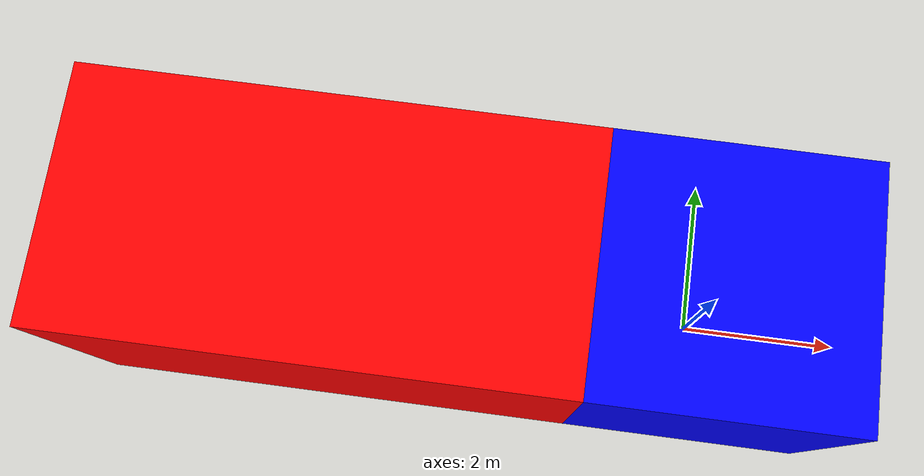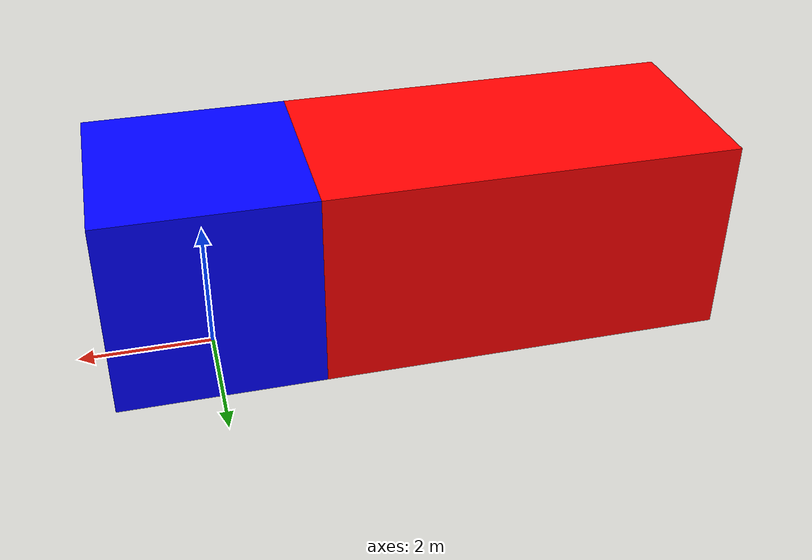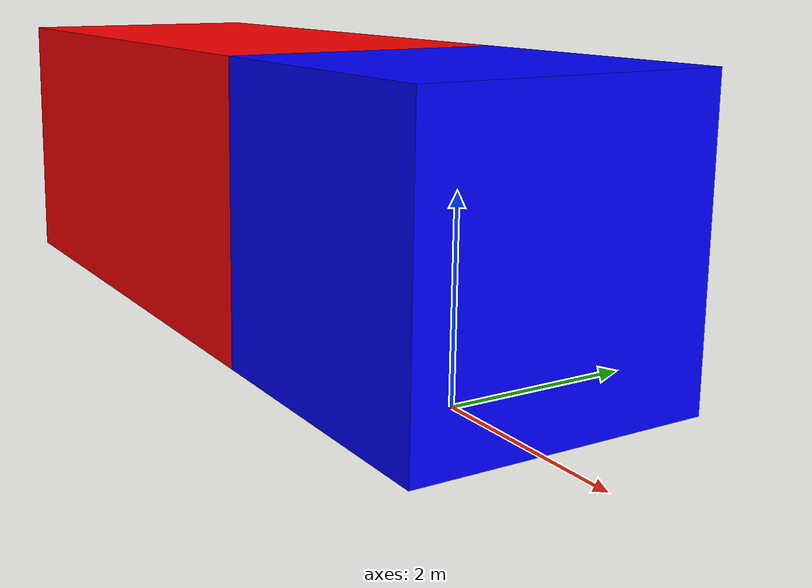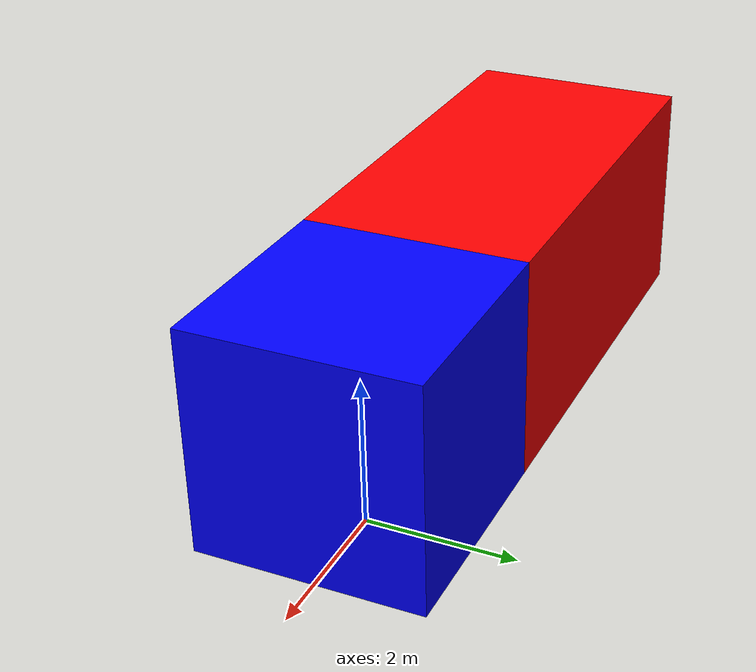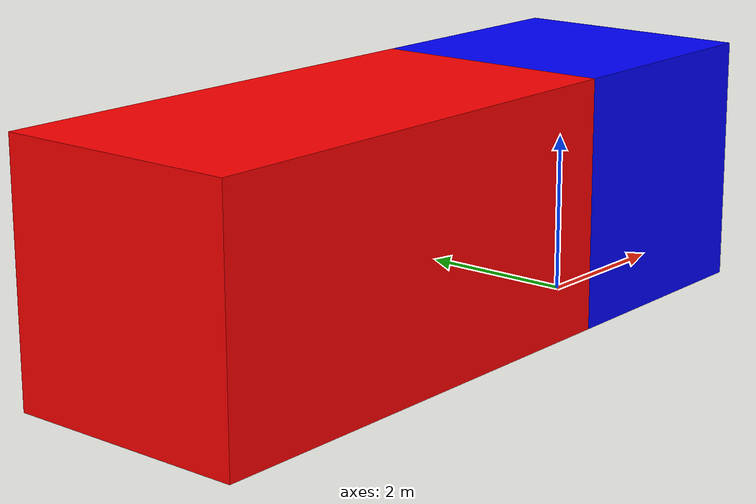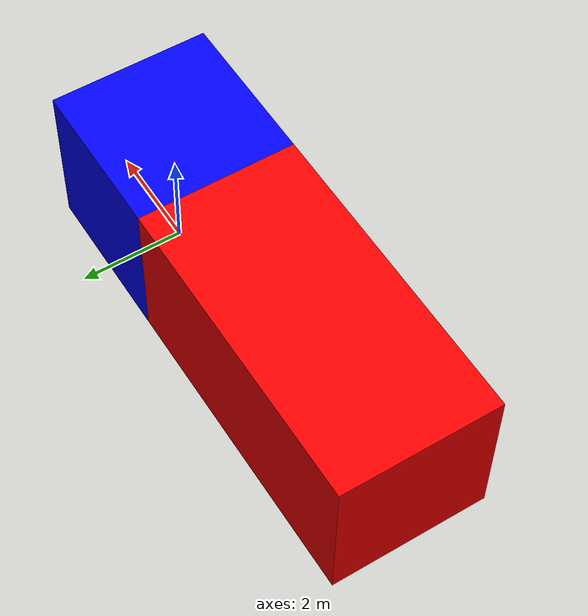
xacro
<?xml version="1.0"?>
<robot xmlns:xacro="http://www.ros.org/wiki/xacro" name="ego_vehicle">

    <xacro:property name="scale_factor" value="6.0" />

    <xacro:property name="laser_size_x" value="0.03"/>
    <xacro:property name="laser_size_y" value="0.03"/>
    <xacro:property name="laser_size_z" value="0.04"/>
    <xacro:property name="laser_origin_x" value="0.065"/>
    <xacro:property name="laser_origin_y" value="0"/>
    <xacro:property name="laser_origin_z" value="0.025"/>

    <xacro:macro name="default_inertial" params="mass">
        <inertial>
        <mass value="${mass}"/>
        <inertia ixx="1.0" ixy="0.0" ixz="0.0" iyy="1.0" iyz="0.0" izz="1.0"/>
        </inertial>
    </xacro:macro>

    <link name="base_footprint">
        <inertial>
            <mass value="0.0001"/>
            <origin xyz="0 0 0" />
            <inertia ixx="0.0001" ixy="0.0" ixz="0.0"
                iyy="0.0001" iyz="0.0"
                izz="0.0001" />
        </inertial>
        <visual>
            <origin xyz="0 0 0.15" rpy="0 0 0" />
            <geometry>
                <box size="0.001 0.001 0.001" />
            </geometry>
        </visual>
    </link>

    <joint name="base_footprint_joint" type="fixed">
        <origin xyz="0 0 0.15" rpy="0 0 0" />
        <parent link="base_footprint"/>
        <child link="tractor" />
    </joint>

    <!-- Tractor -->
    <link name="tractor">
        <visual>
            <origin xyz="0 0 ${scale_factor*0.25}" rpy="0 0 0"/>
            <geometry>
            <box size="${scale_factor*0.5} ${scale_factor*0.5} ${scale_factor*0.5}"/>
            </geometry>
            <material name="blue">
            <color rgba="0 0 1 1"/>
            </material>
        </visual>
        <collision>
            <origin xyz="0 0 ${scale_factor*0.25}" rpy="0 0 0"/>
            <geometry>
            <box size="${scale_factor*0.5} ${scale_factor*0.5} ${scale_factor*0.5}"/>
            </geometry>
            <surface>
            <friction> <!-- friction coefficients must be set to 0 allowing it to move -->
                <ode>
                <mu>0</mu>
                <mu2>0</mu2>
                </ode>
            </friction>
            </surface>
        </collision>
        <inertial>
            <mass value="1"/>
            <origin xyz="0 0 0" rpy="0 0 0"/>
            <inertia ixx="1" ixy="0" ixz="0" iyy="1" iyz="0" izz="1"/>
        </inertial>
    </link>

    <!-- Tractor-trailer Joint -->
    <joint name="hitch_joint" type="revolute">
        <parent link="tractor"/>
        <child link="trailer"/>
        <origin xyz="0 0 0" rpy="0 0 0"/>
        <axis xyz="0 0 1"/>
        <limit effort="1000" velocity="1000.0" lower="-1.5708" upper="1.5708"/>
    </joint>

    <!-- Trailer -->
    <link name="trailer">
        <visual>
            <origin xyz="-${scale_factor*0.75} 0 ${scale_factor*0.25}" rpy="0 0 0"/>
            <geometry>
            <box size="${scale_factor*1} ${scale_factor*0.5} ${scale_factor*0.5}"/>
            </geometry>
            <material name="red">
            <color rgba="1 0 0 1"/>
            </material>
        </visual>
        <collision>
            <origin xyz="-${scale_factor*0.75} 0 ${scale_factor*0.25}" rpy="0 0 0"/>
            <geometry>
            <box size="${scale_factor*1} ${scale_factor*0.5} ${scale_factor*0.5}"/>
            </geometry>
            <surface>
            <friction> <!-- friction coefficients must be set to 0 allowing it to move -->
                <ode>
                <mu>0</mu>
                <mu2>0</mu2>
                </ode>
            </friction>
            </surface>
        </collision>
        <inertial>
            <mass value="1"/>
            <origin xyz="0 0 0" rpy="0 0 0"/>
            <inertia ixx="1" ixy="0" ixz="0" iyy="1" iyz="0" izz="1"/>
        </inertial>
    </link>

    <!-- Joint Controller for Hitch Joint -->
    <transmission name="trans_hitch_joint">
        <type>transmission_interface/SimpleTransmission</type>
        <joint name="hitch_joint">
        <hardwareInterface>hardware_interface/EffortJointInterface</hardwareInterface>
        </joint>
        <actuator name="motor_hitch_joint">
        <hardwareInterface>hardware_interface/EffortJointInterface</hardwareInterface>
        <mechanicalReduction>1</mechanicalReduction>
        </actuator>
    </transmission>

    <!-- Gazebo Plugin for cmd_vel topic -->
    <gazebo>
        <plugin name="object_controller" filename="libgazebo_ros_planar_move.so">
        <alwaysOn>true</alwaysOn>
        <updateRate>100</updateRate>
        <commandTopic>cmd_vel</commandTopic>
        <odometryTopic>odom</odometryTopic>
        <odometryFrame>odom</odometryFrame>
        <odometryRate>50.0</odometryRate>
        <robotBaseFrame>base_footprint</robotBaseFrame>
        <publishTF>true</publishTF>
        <cmdTimeout>10.0</cmdTimeout>
        </plugin>
    </gazebo>

    <!-- Controller Configuration -->
    <gazebo>
        <plugin name="gazebo_ros_control" filename="libgazebo_ros_control.so">
        </plugin>
    </gazebo>

</robot>
